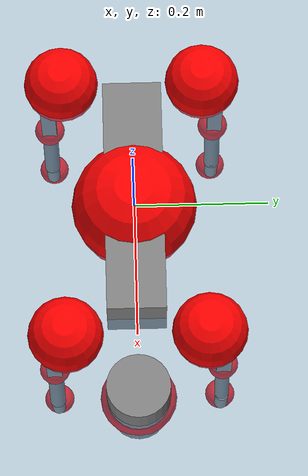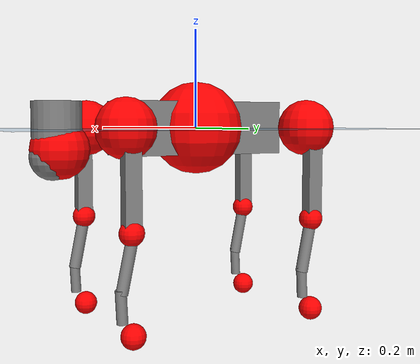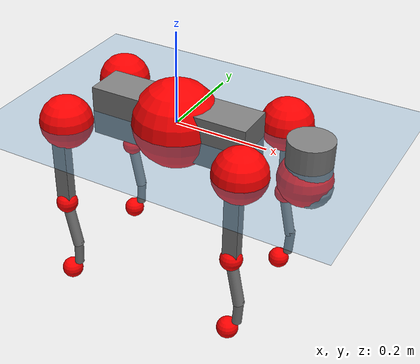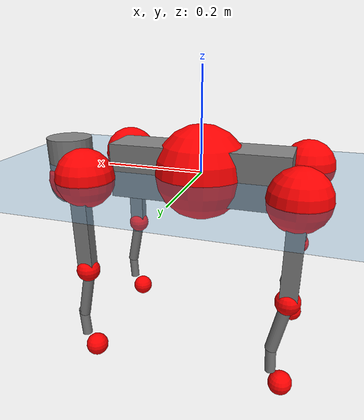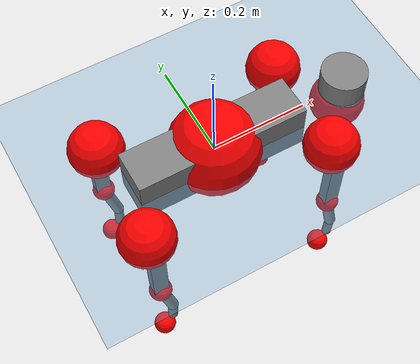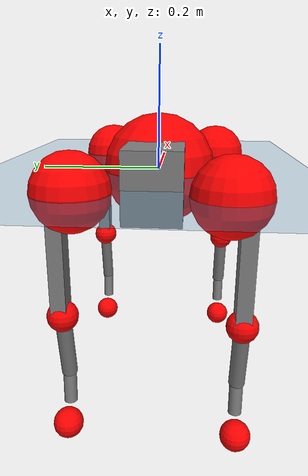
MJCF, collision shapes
<mujoco model="go2">
  <compiler angle="radian" assetdir="assets" balanceinertia="true" inertiafromgeom="false"/>

  <option timestep="0.005" density="1.2" viscosity="2e-05"/>

  <size nkey="1"/>

  <visual>
    <quality shadowsize="8192"/>
    <map shadowclip="0.5"/>
  </visual>

  <default>
    <default class="/">
      <geom contype="0" conaffinity="0" group="1" solref="-1000 -80"/>
      <site size="0.01 0.005 0.005" group="5"/>
      <general forcelimited="true" biastype="affine" gainprm="20" biasprm="0 -20 -0.5"/>
      <default class="go2">
        <joint armature="0.01" damping="0.01" frictionloss="0.2"/>
        <geom condim="1" margin="0.001"/>
        <default class="visual">
          <geom type="mesh" group="2"/>
        </default>
        <default class="collision">
          <geom group="3"/>
          <default class="foot">
            <geom size="0.022 0 0" condim="6" priority="1" friction="0.8 0.02 0.01" solimp="0.015 1 0.022"/>
          </default>
        </default>
        <default class="reward_collision_sphere">
          <geom group="5" rgba="1 0 0 1"/>
        </default>
      </default>
    </default>
  </default>

  <asset>
    <texture type="skybox" colorspace="auto" name="//unnamed_texture_0" builtin="gradient" rgb1="0.95 0.95 0.95" rgb2="0.95 0.95 0.95" width="100" height="600"/>
    <texture type="2d" colorspace="auto" name="texplane" builtin="checker" rgb1="0.345 0.575 0.748" rgb2="0.345 0.575 0.748" markrgb="1 1 1" width="512" height="512"/>
    <material name="MatPlane" class="/" texture="texplane" texuniform="true" texrepeat="2 2" specular="0.9"/>
    <material name="metal" class="/" rgba="0.9 0.95 0.95 1"/>
    <material name="black" class="/" rgba="0 0 0 1"/>
    <material name="white" class="/"/>
    <material name="gray" class="/" rgba="0.671705 0.692426 0.77427 1"/>
    <mesh name="base_0" class="/" file="base_0.obj"/>
    <mesh name="base_1" class="/" file="base_1.obj"/>
    <mesh name="base_2" class="/" file="base_2.obj"/>
    <mesh name="base_3" class="/" file="base_3.obj"/>
    <mesh name="base_4" class="/" file="base_4.obj"/>
    <mesh name="hip_0" class="/" file="hip_0.obj"/>
    <mesh name="hip_1" class="/" file="hip_1.obj"/>
    <mesh name="thigh_0" class="/" file="thigh_0.obj"/>
    <mesh name="thigh_1" class="/" file="thigh_1.obj"/>
    <mesh name="thigh_mirror_0" class="/" file="thigh_mirror_0.obj"/>
    <mesh name="thigh_mirror_1" class="/" file="thigh_mirror_1.obj"/>
    <mesh name="calf_0" class="/" file="calf_0.obj"/>
    <mesh name="calf_1" class="/" file="calf_1.obj"/>
    <mesh name="calf_mirror_0" class="/" file="calf_mirror_0.obj"/>
    <mesh name="calf_mirror_1" class="/" file="calf_mirror_1.obj"/>
    <mesh name="foot" class="/" file="foot.obj"/>
  </asset>

  <worldbody>
    <geom name="floor" class="/" size="100 100 0.125" type="plane" group="0" material="MatPlane"/>
    <light name="toplight_shadow" class="/" pos="0 0 5" dir="0.0990148 0.0990148 -0.990148" type="directional" ambient="0.04 0.04 0.04" diffuse="0.55 0.55 0.55" specular="0.12 0.12 0.12"/>
    <light name="toplight_fill" class="/" pos="0 0 5" dir="0.0990148 0.0990148 -0.990148" type="directional" castshadow="false" ambient="0.04 0.04 0.04" diffuse="0.3 0.3 0.3" specular="0.08 0.08 0.08"/>
    <body name="trunk" childclass="go2" pos="-0.000403999 0.000120752 0.000229609" quat="1 -0.000209019 6.52235e-05 -4.91473e-05">
      <inertial pos="0.0214578 0.000148421 -0.00475125" quat="-0.00223257 0.713086 0.000333332 0.701073" mass="5.62692" diaginertia="0.118664 0.0618743 0.0123512"/>
      <joint name="//unnamed_joint_0" type="free" armature="0" damping="0" frictionloss="0"/>
      <geom name="//unnamed_geom_1" class="visual" material="black" mesh="base_0"/>
      <geom name="//unnamed_geom_2" class="visual" material="black" mesh="base_1"/>
      <geom name="//unnamed_geom_3" class="visual" material="black" mesh="base_2"/>
      <geom name="//unnamed_geom_4" class="visual" material="white" mesh="base_3"/>
      <geom name="//unnamed_geom_5" class="visual" material="gray" mesh="base_4"/>
      <geom name="trunk_1" class="collision" size="0.17621 0.0437948 0.0533969" type="box"/>
      <geom name="trunk_2" class="collision" size="0.0468394 0.0421555" pos="0.291771 0 0.00871976" type="cylinder"/>
      <geom name="trunk_3" class="collision" size="0.044029" pos="0.299961 0 -0.0523186"/>
      <geom name="//unnamed_geom_9" class="reward_collision_sphere" size="0.0936788"/>
      <geom name="//unnamed_geom_10" class="reward_collision_sphere" size="0.0562073" pos="0.286652 0 -0.0392389"/>
      <site name="imu" pos="-0.0237762 0.00066937 0.0364709" size="0.00936788"/>
      <camera name="track" pos="0 -1.82926 0" quat="0.707107 0.707107 0 0" mode="trackcom"/>
      <camera name="ego_camera" pos="0.319412 0 0.0392389" quat="-0.5 -0.5 0.5 0.5"/>
      <body name="FL_hip" pos="0.197309 0.0433084 0.00094602" quat="1 -0.000163424 -2.74087e-05 9.49411e-05">
        <inertial pos="-0.00517337 0.00188499 -0.000343515" quat="0.497485 0.498853 0.505601 0.498018" mass="0.553927" diaginertia="0.000988463 0.00038497 0.000242236"/>
        <joint name="FL_hip_joint" pos="0 0 0" axis="0.999961 0.00530019 -0.0071125" range="-1.04321 1.04911" armature="0.009364" damping="0.00533127" frictionloss="0.184052"/>
        <geom name="//unnamed_geom_11" class="visual" material="metal" mesh="hip_0"/>
        <geom name="//unnamed_geom_12" class="visual" material="gray" mesh="hip_1"/>
        <geom name="//unnamed_geom_13" class="collision" size="0.0430922 0.0187358" pos="0 0.0731704 0" quat="0.707107 0.707107 0 0" type="cylinder"/>
        <geom name="//unnamed_geom_14" class="reward_collision_sphere" size="0.0562073" pos="0 0.0640241 0"/>
        <body name="FL_thigh" pos="0.000398035 0.0875863 0.00075384" quat="1 -4.40676e-05 2.10686e-05 -0.000168247">
          <inertial pos="-0.00383341 -0.0201967 -0.0286047" quat="0.830172 0.0840392 -0.0203619 0.550761" mass="0.942984" diaginertia="0.00667971 0.00372288 0.000440064"/>
          <joint name="FL_thigh_joint" pos="0 0 0" axis="-0.0016857 0.999996 -0.00216217" stiffness="0.00436413" range="-1.56919 3.49176" armature="0.00902573" damping="0.0112953" frictionloss="0.193648"/>
          <geom name="//unnamed_geom_15" class="visual" material="metal" mesh="thigh_0"/>
          <geom name="//unnamed_geom_16" class="visual" material="gray" mesh="thigh_1"/>
          <geom name="//unnamed_geom_17" class="collision" size="0.0997679 0.0114757 0.0159254" pos="0 0 -0.0928655" quat="0.707107 0 0.707107 0" type="box"/>
          <body name="FL_calf" pos="-0.000480067 -0.000421866 -0.18564" quat="1 0.000369179 0.000237302 -0.000185887">
            <inertial pos="0.0061252 -0.000762226 -0.122561" quat="0.710255 0.00150462 -0.0042678 0.70393" mass="0.194705" diaginertia="0.00167725 0.00092664 2.67463e-05"/>
            <joint name="FL_calf_joint" pos="0 0 0" axis="-0.00075574 1 0.000587617" stiffness="0.000581839" range="-2.72305 -0.836316" armature="0.00926955" damping="0.00736802" frictionloss="0.184635"/>
            <geom name="//unnamed_geom_18" class="visual" material="gray" mesh="calf_0"/>
            <geom name="//unnamed_geom_19" class="visual" material="black" mesh="calf_1"/>
            <geom name="FL_calf0" class="collision" size="0.0112415 0.0562073" pos="0.00819006 0 -0.0523186" quat="0.994493 0 -0.104807 0" type="cylinder"/>
            <geom name="//unnamed_geom_21" class="collision" size="0.0103047 0.0304456" pos="0.0204751 0 -0.129053" quat="0.999688 0 0.0249974 0" type="cylinder"/>
            <geom name="//unnamed_geom_22" class="visual" pos="0 0 -0.185731" quat="1 0 0 0" material="black" mesh="foot"/>
            <geom name="FL_foot" class="foot" size="0.0163469" pos="-0.00204751 0 -0.185731"/>
            <geom name="//unnamed_geom_24" class="reward_collision_sphere" size="0.0234197"/>
            <geom name="//unnamed_geom_25" class="reward_collision_sphere" size="0.0234197" pos="-0.00204751 0 -0.185731"/>
            <site name="FL_foot" class="foot" pos="-0.00204751 0 -0.185731" size="0.00936788"/>
          </body>
        </body>
      </body>
      <body name="FR_hip" pos="0.198655 -0.0413878 0.00031192" quat="1 7.52924e-06 -9.31568e-06 2.33245e-05">
        <inertial pos="-0.00504446 -0.00115108 -0.000911574" quat="0.495385 0.505143 0.501731 0.497685" mass="0.556721" diaginertia="0.000995539 0.000385463 0.000242005"/>
        <joint name="FR_hip_joint" pos="0 0 0" axis="0.999988 -0.00254571 0.00426876" stiffness="0.00358308" range="-1.04649 1.04254" armature="0.00938431" damping="0.013863" frictionloss="0.193562"/>
        <geom name="//unnamed_geom_26" class="visual" pos="0 3.71578e-10 1.59378e-08" quat="4.63268e-05 1 0 0" material="metal" mesh="hip_0"/>
        <geom name="//unnamed_geom_27" class="visual" pos="0 6.02373e-10 -3.94202e-08" quat="4.63268e-05 1 0 0" material="gray" mesh="hip_1"/>
        <geom name="//unnamed_geom_28" class="collision" size="0.0430922 0.0187358" pos="0 -0.0731704 0" quat="0.707107 0.707107 0 0" type="cylinder"/>
        <geom name="//unnamed_geom_29" class="reward_collision_sphere" size="0.0562073" pos="0 -0.0640241 0"/>
        <body name="FR_thigh" pos="0.000623599 -0.0864724 5.78105e-05" quat="1 1.02829e-05 3.0455e-05 -8.43978e-05">
          <inertial pos="-0.00347891 0.021106 -0.0279477" quat="0.551598 -0.0201563 0.0847663 0.829547" mass="0.951329" diaginertia="0.00668423 0.00375768 0.000445374"/>
          <joint name="FR_thigh_joint" pos="0 0 0" axis="-0.0053331 -0.999979 -0.00378502" stiffness="0.000748798" range="-3.48733 1.56289" armature="0.00912874" damping="0.0142346" frictionloss="0.189923"/>
          <geom name="//unnamed_geom_30" class="visual" material="metal" mesh="thigh_mirror_0"/>
          <geom name="//unnamed_geom_31" class="visual" material="gray" mesh="thigh_mirror_1"/>
          <geom name="//unnamed_geom_32" class="collision" size="0.0997679 0.0114757 0.0159254" pos="0 0 -0.0928655" quat="0.707107 0 0.707107 0" type="box"/>
          <body name="FR_calf" pos="-0.000363503 -0.000139228 -0.185931" quat="1 3.32805e-05 -2.19097e-05 -9.5711e-05">
            <inertial pos="0.00710096 0.00146878 -0.124314" quat="0.702995 -0.00485354 0.00167864 0.711176" mass="0.200072" diaginertia="0.00166688 0.000930533 2.68721e-05"/>
            <joint name="FR_calf_joint" pos="0 0 0" axis="0.00072748 -1 -0.000241803" range="0.836037 2.72412" armature="0.00931006" damping="0.007341" frictionloss="0.182929"/>
            <geom name="//unnamed_geom_33" class="visual" material="gray" mesh="calf_mirror_0"/>
            <geom name="//unnamed_geom_34" class="visual" material="black" mesh="calf_mirror_1"/>
            <geom name="FR_calf0" class="collision" size="0.0121782 0.0562073" pos="0.0102376 0 -0.0523186" quat="0.995004 0 -0.0998334 0" type="cylinder"/>
            <geom name="//unnamed_geom_36" class="collision" size="0.0103047 0.0304456" pos="0.0204751 0 -0.129053" quat="0.999688 0 0.0249974 0" type="cylinder"/>
            <geom name="//unnamed_geom_37" class="visual" pos="0 0 -0.185731" quat="1 0 0 0" material="black" mesh="foot"/>
            <geom name="FR_foot" class="foot" size="0.0220322" pos="-0.00204751 0 -0.185731"/>
            <geom name="//unnamed_geom_39" class="reward_collision_sphere" size="0.0234197"/>
            <geom name="//unnamed_geom_40" class="reward_collision_sphere" size="0.0234197" pos="-0.00204751 0 -0.185731"/>
            <site name="FR_foot" class="foot" pos="-0.00204751 0 -0.185731" size="0.00936788"/>
          </body>
        </body>
      </body>
      <body name="RL_hip" pos="-0.197359 0.0429888 0.000562036" quat="1 -0.000466563 -9.05734e-06 -0.000119785">
        <inertial pos="0.00542225 0.00177197 -0.00015975" quat="0.506403 0.498402 0.498074 0.497066" mass="0.560631" diaginertia="0.000989757 0.00038222 0.00024409"/>
        <joint name="RL_hip_joint" pos="0 0 0" axis="-0.99979 -0.0179794 -0.00985979" stiffness="7.52685e-05" range="-1.06447 1.05264" armature="0.0093585" damping="0.0160182" frictionloss="0.184319"/>
        <geom name="//unnamed_geom_41" class="visual" pos="-1.32225e-09 0 -2.59191e-07" quat="4.63268e-05 0 1 0" material="metal" mesh="hip_0"/>
        <geom name="//unnamed_geom_42" class="visual" pos="-2.14353e-09 0 -2.29866e-07" quat="4.63268e-05 0 1 0" material="gray" mesh="hip_1"/>
        <geom name="//unnamed_geom_43" class="collision" size="0.0430922 0.0187358" pos="0 0.0731704 0" quat="0.707107 0.707107 0 0" type="cylinder"/>
        <geom name="//unnamed_geom_44" class="reward_collision_sphere" size="0.0562073" pos="0 0.0640241 0"/>
        <body name="RL_thigh" pos="-0.0010082 0.0862333 0.00116052" quat="1 3.33678e-05 -6.11595e-05 -4.68184e-05">
          <inertial pos="-0.00333602 -0.0200352 -0.0286869" quat="0.827948 0.0823415 -0.0208538 0.554335" mass="0.940893" diaginertia="0.00668953 0.00369199 0.000436054"/>
          <joint name="RL_thigh_joint" pos="0 0 0" axis="0.000390641 1 -8.25023e-05" stiffness="0.000589104" range="-0.539271 4.52444" armature="0.0092486" damping="0.00938745" frictionloss="0.181631"/>
          <geom name="//unnamed_geom_45" class="visual" material="metal" mesh="thigh_0"/>
          <geom name="//unnamed_geom_46" class="visual" material="gray" mesh="thigh_1"/>
          <geom name="//unnamed_geom_47" class="collision" size="0.0997679 0.0114757 0.0159254" pos="0 0 -0.0928655" quat="0.707107 0 0.707107 0" type="box"/>
          <body name="RL_calf" pos="0.000978009 -0.0018664 -0.18602" quat="1 -2.61745e-05 4.97762e-05 6.12373e-05">
            <inertial pos="0.00610085 -0.000338182 -0.122506" quat="0.709552 0.00218125 -0.00681528 0.704617" mass="0.198745" diaginertia="0.00166842 0.000937351 2.68072e-05"/>
            <joint name="RL_calf_joint" pos="0 0 0" axis="-0.00522981 0.999969 0.00585654" stiffness="0.003305" range="-2.71311 -0.820602" armature="0.00956353" damping="0.000491477" frictionloss="0.194967"/>
            <geom name="//unnamed_geom_48" class="visual" material="gray" mesh="calf_0"/>
            <geom name="//unnamed_geom_49" class="visual" material="black" mesh="calf_1"/>
            <geom name="RL_calf0" class="collision" size="0.0121782 0.0562073" pos="0.0102376 0 -0.0523186" quat="0.995004 0 -0.0998334 0" type="cylinder"/>
            <geom name="//unnamed_geom_51" class="collision" size="0.0103047 0.0304456" pos="0.0204751 0 -0.129053" quat="0.999688 0 0.0249974 0" type="cylinder"/>
            <geom name="//unnamed_geom_52" class="visual" pos="0 0 -0.185731" quat="1 0 0 0" material="black" mesh="foot"/>
            <geom name="RL_foot" class="foot" size="0.0182084" pos="-0.00204751 0 -0.185731"/>
            <geom name="//unnamed_geom_54" class="reward_collision_sphere" size="0.0234197"/>
            <geom name="//unnamed_geom_55" class="reward_collision_sphere" size="0.0234197" pos="-0.00204751 0 -0.185731"/>
            <site name="RL_foot" class="foot" pos="-0.00204751 0 -0.185731" size="0.00936788"/>
          </body>
        </body>
      </body>
      <body name="RR_hip" pos="-0.198359 -0.0433362 -0.00184711" quat="1 9.17195e-06 6.33244e-05 -9.59722e-05">
        <inertial pos="0.00452483 -0.00223501 0.000172239" quat="0.499288 0.496959 0.498316 0.505395" mass="0.556659" diaginertia="0.000983568 0.000376664 0.000239035"/>
        <joint name="RR_hip_joint" pos="0 0 0" axis="-0.999998 3.04189e-05 -0.00180847" range="-1.04761 1.05606" armature="0.00921536" damping="0.00672399" frictionloss="0.188804"/>
        <geom name="//unnamed_geom_56" class="visual" pos="1.31847e-09 3.71578e-10 -2.75129e-07" quat="2.14617e-09 4.63268e-05 4.63268e-05 -1" material="metal" mesh="hip_0"/>
        <geom name="//unnamed_geom_57" class="visual" pos="2.15287e-09 6.02373e-10 -1.90446e-07" quat="2.14617e-09 4.63268e-05 4.63268e-05 -1" material="gray" mesh="hip_1"/>
        <geom name="//unnamed_geom_58" class="collision" size="0.0430922 0.0187358" pos="0 -0.0731704 0" quat="0.707107 0.707107 0 0" type="cylinder"/>
        <geom name="//unnamed_geom_59" class="reward_collision_sphere" size="0.0562073" pos="0 -0.0640241 0"/>
        <body name="RR_thigh" pos="0.000451638 -0.0883321 -0.00154241" quat="1 -2.82788e-05 5.03035e-05 -9.0503e-05">
          <inertial pos="-0.00326374 0.0206742 -0.0281602" quat="0.55152 -0.0199406 0.0826105 0.829821" mass="0.94194" diaginertia="0.00668678 0.00370849 0.000445801"/>
          <joint name="RR_thigh_joint" pos="0 0 0" axis="-0.000567449 -0.999991 -0.00428128" stiffness="0.00257819" range="-4.54161 0.530017" armature="0.00909826" damping="0.0168665" frictionloss="0.191131"/>
          <geom name="//unnamed_geom_60" class="visual" material="metal" mesh="thigh_mirror_0"/>
          <geom name="//unnamed_geom_61" class="visual" material="gray" mesh="thigh_mirror_1"/>
          <geom name="//unnamed_geom_62" class="collision" size="0.0997679 0.0114757 0.0159254" pos="0 0 -0.0928655" quat="0.707107 0 0.707107 0" type="box"/>
          <body name="RR_calf" pos="0.00104158 -0.000366224 -0.186287" quat="1 0.000139055 0.000117341 -3.58514e-05">
            <inertial pos="0.00669542 0.000387759 -0.123503" quat="0.703854 -0.0040509 0.00170312 0.710331" mass="0.197604" diaginertia="0.00169996 0.000933841 2.69262e-05"/>
            <joint name="RR_calf_joint" pos="0 0 0" axis="-0.0026993 -0.999996 -0.000430285" range="0.83016 2.72561" armature="0.00933351" damping="0.00936076" frictionloss="0.187385"/>
            <geom name="//unnamed_geom_63" class="visual" material="gray" mesh="calf_mirror_0"/>
            <geom name="//unnamed_geom_64" class="visual" material="black" mesh="calf_mirror_1"/>
            <geom name="RR_calf0" class="collision" size="0.0121782 0.0562073" pos="0.0102376 0 -0.0523186" quat="0.995004 0 -0.0998334 0" type="cylinder"/>
            <geom name="//unnamed_geom_66" class="collision" size="0.0103047 0.0304456" pos="0.0204751 0 -0.129053" quat="0.999688 0 0.0249974 0" type="cylinder"/>
            <geom name="//unnamed_geom_67" class="visual" pos="0 0 -0.185731" quat="1 0 0 0" material="black" mesh="foot"/>
            <geom name="RR_foot" class="foot" size="0.0216808" pos="-0.00204751 0 -0.185731"/>
            <geom name="//unnamed_geom_69" class="reward_collision_sphere" size="0.0234197"/>
            <geom name="//unnamed_geom_70" class="reward_collision_sphere" size="0.0234197" pos="-0.00204751 0 -0.185731"/>
            <site name="RR_foot" class="foot" pos="-0.00204751 0 -0.185731" size="0.00936788"/>
          </body>
        </body>
      </body>
    </body>
  </worldbody>

  <contact>
    <pair class="/" geom1="floor" geom2="FL_foot" name="//unnamed_contact_0"/>
    <pair class="/" geom1="floor" geom2="FR_foot" name="//unnamed_contact_1"/>
    <pair class="/" geom1="floor" geom2="RL_foot" name="//unnamed_contact_2"/>
    <pair class="/" geom1="floor" geom2="RR_foot" name="//unnamed_contact_3"/>
  </contact>

  <actuator>
    <general name="FL_hip" class="/" joint="FL_hip_joint" forcerange="-22.1589 22.1589" gainprm="18.8539" biasprm="0 -18.8539 -0.475576"/>
    <general name="FL_thigh" class="/" joint="FL_thigh_joint" forcerange="-22.7479 22.7479" gainprm="18.8539" biasprm="0 -18.8539 -0.475576"/>
    <general name="FL_calf" class="/" joint="FL_calf_joint" forcerange="-41.6847 41.6847" gainprm="18.8539" biasprm="0 -18.8539 -0.475576"/>
    <general name="FR_hip" class="/" joint="FR_hip_joint" forcerange="-22.1923 22.1923" gainprm="18.8539" biasprm="0 -18.8539 -0.475576"/>
    <general name="FR_thigh" class="/" joint="FR_thigh_joint" forcerange="-21.9166 21.9166" gainprm="18.8539" biasprm="0 -18.8539 -0.475576"/>
    <general name="FR_calf" class="/" joint="FR_calf_joint" forcerange="-41.0544 41.0544" gainprm="18.8539" biasprm="0 -18.8539 -0.475576"/>
    <general name="RL_hip" class="/" joint="RL_hip_joint" forcerange="-22.1983 22.1983" gainprm="18.8539" biasprm="0 -18.8539 -0.475576"/>
    <general name="RL_thigh" class="/" joint="RL_thigh_joint" forcerange="-21.5533 21.5533" gainprm="18.8539" biasprm="0 -18.8539 -0.475576"/>
    <general name="RL_calf" class="/" joint="RL_calf_joint" forcerange="-42.9694 42.9694" gainprm="18.8539" biasprm="0 -18.8539 -0.475576"/>
    <general name="RR_hip" class="/" joint="RR_hip_joint" forcerange="-22.3279 22.3279" gainprm="18.8539" biasprm="0 -18.8539 -0.475576"/>
    <general name="RR_thigh" class="/" joint="RR_thigh_joint" forcerange="-22.5923 22.5923" gainprm="18.8539" biasprm="0 -18.8539 -0.475576"/>
    <general name="RR_calf" class="/" joint="RR_calf_joint" forcerange="-41.9456 41.9456" gainprm="18.8539" biasprm="0 -18.8539 -0.475576"/>
  </actuator>

  <sensor>
    <gyro site="imu" name="imu_angular_velocity"/>
    <velocimeter site="imu" name="imu_linear_velocity"/>
    <framelinvel objtype="site" objname="FL_foot" name="FL_foot_global_linear_velocity"/>
    <framelinvel objtype="site" objname="FR_foot" name="FR_foot_global_linear_velocity"/>
    <framelinvel objtype="site" objname="RL_foot" name="RL_foot_global_linear_velocity"/>
    <framelinvel objtype="site" objname="RR_foot" name="RR_foot_global_linear_velocity"/>
  </sensor>

  <keyframe>
    <key name="home" qpos="0 0 0.325 1 0 0 0 0.1 0.8 -1.5 -0.1 -0.8 1.5 -0.1 0.8 -1.5 0.1 -0.8 1.5"/>
  </keyframe>
</mujoco>
